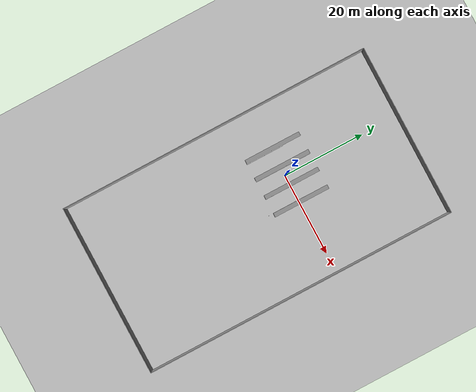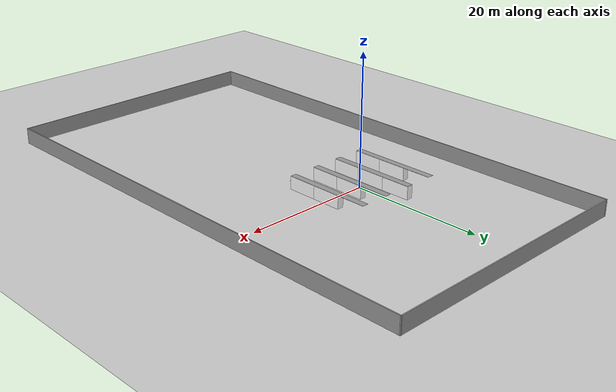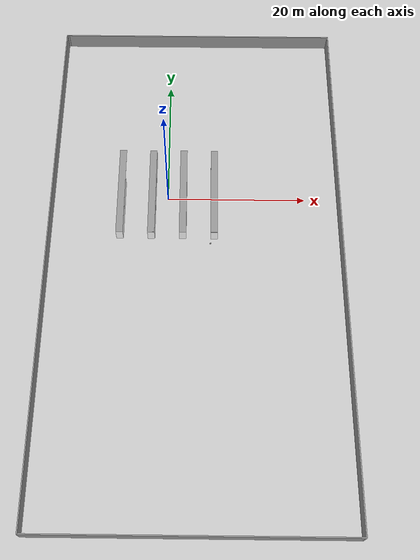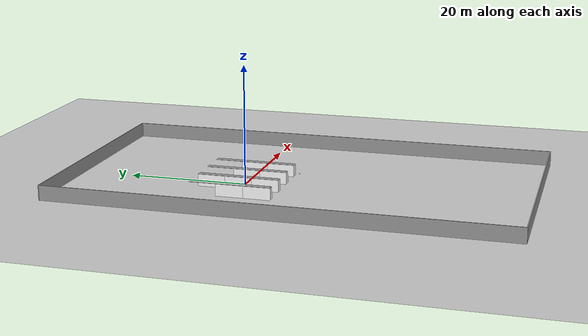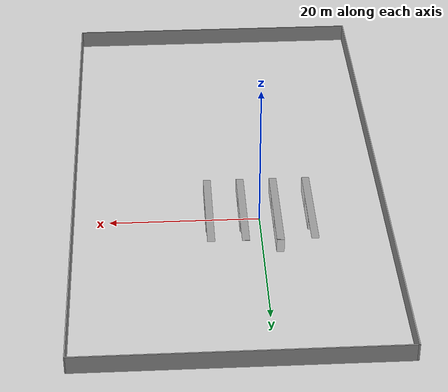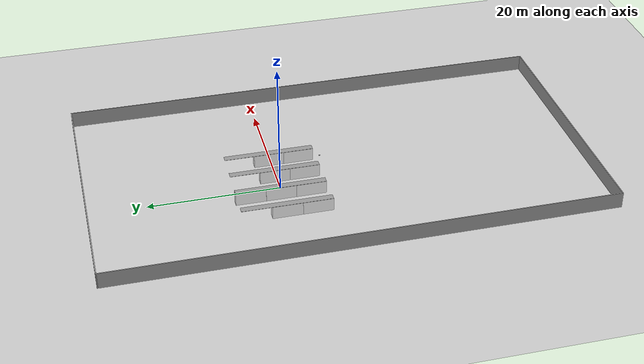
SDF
<sdf version="1.6">
 <world name="default">
  <model name="ground_plane">
   <static>1</static>
   <link name="link">
    <collision name="collision">
     <geometry><plane><normal>0 0 1</normal><size>100 100</size></plane></geometry>
     <surface><friction><ode><mu>100</mu><mu2>50</mu2></ode></friction></surface>
    </collision>
    <visual name="visual">
     <cast_shadows>0</cast_shadows>
     <geometry><plane><normal>0 0 1</normal><size>100 100</size></plane></geometry>
     <material>
      <script><uri>file://media/materials/scripts/gazebo.material</uri><name>Gazebo/Grey</name></script>
     </material>
    </visual>
   </link>
  </model>
  <model name="market_aisle_clone">
   <link name="link_0">
    <inertial>
     <mass>45.3865</mass>
     <inertia><ixx>668.696</ixx><ixy>0</ixy><ixz>0</ixz><iyy>41.6273</iyy><iyz>0</iyz><izz>636.647</izz></inertia>
    </inertial>
    <visual name="visual">
     <material>
      <script>
       <uri>model://market_aisle/materials/scripts</uri>
       <uri>model://market_aisle/materials/textures</uri>
       <name>market_aisle/Picture</name>
      </script>
      <shader type="pixel"><normal_map>__default__</normal_map></shader>
      <ambient>1 1 1 1</ambient>
      <diffuse>1 1 1 1</diffuse>
      <specular>0 0 0 1</specular>
      <emissive>0 0 0 1</emissive>
     </material>
     <geometry><box><size>1 4.57035 2</size></box></geometry>
    </visual>
    <collision name="collision">
     <geometry><box><size>1 4.57035 2</size></box></geometry>
     <surface>
      <friction>
       <ode><mu>1</mu><mu2>1</mu2><fdir1>0 0 0</fdir1><slip1>0</slip1><slip2>0</slip2></ode>
       <torsional>
        <coefficient>1</coefficient>
        <patch_radius>0</patch_radius>
        <surface_radius>0</surface_radius>
        <use_patch_radius>1</use_patch_radius>
        <ode><slip>0</slip></ode>
       </torsional>
      </friction>
      <bounce><restitution_coefficient>0</restitution_coefficient><threshold>1e+06</threshold></bounce>
      <contact>
       <collide_without_contact>0</collide_without_contact>
       <collide_without_contact_bitmask>1</collide_without_contact_bitmask>
       <collide_bitmask>1</collide_bitmask>
       <ode>
        <soft_cfm>0</soft_cfm>
        <soft_erp>0.2</soft_erp>
        <kp>1e+13</kp>
        <kd>1</kd>
        <max_vel>0.01</max_vel>
        <min_depth>0</min_depth>
       </ode>
       <bullet>
        <split_impulse>1</split_impulse>
        <split_impulse_penetration_threshold>-0.01</split_impulse_penetration_threshold>
        <soft_cfm>0</soft_cfm>
        <soft_erp>0.2</soft_erp>
        <kp>1e+13</kp>
        <kd>1</kd>
       </bullet>
      </contact>
     </surface>
    </collision>
   </link>
   <static>1</static>
   <pose>-2.25 -4.17401 1 0 -0 0</pose>
  </model>
  <model name="market_aisle_clone_0">
   <link name="link_0">
    <inertial>
     <mass>45.3865</mass>
     <inertia><ixx>668.696</ixx><ixy>0</ixy><ixz>0</ixz><iyy>41.6273</iyy><iyz>0</iyz><izz>636.647</izz></inertia>
    </inertial>
    <visual name="visual">
     <material>
      <script>
       <uri>model://market_aisle/materials/scripts</uri>
       <uri>model://market_aisle/materials/textures</uri>
       <name>market_aisle/Picture</name>
      </script>
      <shader type="pixel"><normal_map>__default__</normal_map></shader>
      <ambient>1 1 1 1</ambient>
      <diffuse>1 1 1 1</diffuse>
      <specular>0 0 0 1</specular>
      <emissive>0 0 0 1</emissive>
     </material>
     <geometry><box><size>1 4.57035 2</size></box></geometry>
    </visual>
    <collision name="collision">
     <geometry><box><size>1 4.57035 2</size></box></geometry>
     <surface>
      <friction>
       <ode><mu>1</mu><mu2>1</mu2><fdir1>0 0 0</fdir1><slip1>0</slip1><slip2>0</slip2></ode>
       <torsional>
        <coefficient>1</coefficient>
        <patch_radius>0</patch_radius>
        <surface_radius>0</surface_radius>
        <use_patch_radius>1</use_patch_radius>
        <ode><slip>0</slip></ode>
       </torsional>
      </friction>
      <bounce><restitution_coefficient>0</restitution_coefficient><threshold>1e+06</threshold></bounce>
      <contact>
       <collide_without_contact>0</collide_without_contact>
       <collide_without_contact_bitmask>1</collide_without_contact_bitmask>
       <collide_bitmask>1</collide_bitmask>
       <ode>
        <soft_cfm>0</soft_cfm>
        <soft_erp>0.2</soft_erp>
        <kp>1e+13</kp>
        <kd>1</kd>
        <max_vel>0.01</max_vel>
        <min_depth>0</min_depth>
       </ode>
       <bullet>
        <split_impulse>1</split_impulse>
        <split_impulse_penetration_threshold>-0.01</split_impulse_penetration_threshold>
        <soft_cfm>0</soft_cfm>
        <soft_erp>0.2</soft_erp>
        <kp>1e+13</kp>
        <kd>1</kd>
       </bullet>
      </contact>
     </surface>
    </collision>
   </link>
   <static>1</static>
   <pose>-2.25 4.953 1 0 -0 0</pose>
  </model>
  <model name="market_aisle_clone1">
   <link name="link_0">
    <inertial>
     <mass>45.3865</mass>
     <inertia><ixx>668.696</ixx><ixy>0</ixy><ixz>0</ixz><iyy>41.6273</iyy><iyz>0</iyz><izz>636.647</izz></inertia>
    </inertial>
    <visual name="visual">
     <material>
      <script>
       <uri>model://market_aisle/materials/scripts</uri>
       <uri>model://market_aisle/materials/textures</uri>
       <name>market_aisle/Picture</name>
      </script>
      <shader type="pixel"><normal_map>__default__</normal_map></shader>
      <ambient>1 1 1 1</ambient>
      <diffuse>1 1 1 1</diffuse>
      <specular>0 0 0 1</specular>
      <emissive>0 0 0 1</emissive>
     </material>
     <geometry><box><size>1 4.57035 2</size></box></geometry>
    </visual>
    <collision name="collision">
     <geometry><box><size>1 4.57035 2</size></box></geometry>
     <surface>
      <friction>
       <ode><mu>1</mu><mu2>1</mu2><fdir1>0 0 0</fdir1><slip1>0</slip1><slip2>0</slip2></ode>
       <torsional>
        <coefficient>1</coefficient>
        <patch_radius>0</patch_radius>
        <surface_radius>0</surface_radius>
        <use_patch_radius>1</use_patch_radius>
        <ode><slip>0</slip></ode>
       </torsional>
      </friction>
      <bounce><restitution_coefficient>0</restitution_coefficient><threshold>1e+06</threshold></bounce>
      <contact>
       <collide_without_contact>0</collide_without_contact>
       <collide_without_contact_bitmask>1</collide_without_contact_bitmask>
       <collide_bitmask>1</collide_bitmask>
       <ode>
        <soft_cfm>0</soft_cfm>
        <soft_erp>0.2</soft_erp>
        <kp>1e+13</kp>
        <kd>1</kd>
        <max_vel>0.01</max_vel>
        <min_depth>0</min_depth>
       </ode>
       <bullet>
        <split_impulse>1</split_impulse>
        <split_impulse_penetration_threshold>-0.01</split_impulse_penetration_threshold>
        <soft_cfm>0</soft_cfm>
        <soft_erp>0.2</soft_erp>
        <kp>1e+13</kp>
        <kd>1</kd>
       </bullet>
      </contact>
     </surface>
    </collision>
   </link>
   <static>1</static>
   <pose>2.25 -4.17401 1 0 -0 0</pose>
  </model>
  <model name="market_aisle_clone2">
   <link name="link_0">
    <inertial>
     <mass>45.3865</mass>
     <inertia><ixx>668.696</ixx><ixy>0</ixy><ixz>0</ixz><iyy>41.6273</iyy><iyz>0</iyz><izz>636.647</izz></inertia>
    </inertial>
    <visual name="visual">
     <material>
      <script>
       <uri>model://market_aisle/materials/scripts</uri>
       <uri>model://market_aisle/materials/textures</uri>
       <name>market_aisle/Picture</name>
      </script>
      <shader type="pixel"><normal_map>__default__</normal_map></shader>
      <ambient>1 1 1 1</ambient>
      <diffuse>1 1 1 1</diffuse>
      <specular>0 0 0 1</specular>
      <emissive>0 0 0 1</emissive>
     </material>
     <geometry><box><size>1 4.57035 2</size></box></geometry>
    </visual>
    <collision name="collision">
     <geometry><box><size>1 4.57035 2</size></box></geometry>
     <surface>
      <friction>
       <ode><mu>1</mu><mu2>1</mu2><fdir1>0 0 0</fdir1><slip1>0</slip1><slip2>0</slip2></ode>
       <torsional>
        <coefficient>1</coefficient>
        <patch_radius>0</patch_radius>
        <surface_radius>0</surface_radius>
        <use_patch_radius>1</use_patch_radius>
        <ode><slip>0</slip></ode>
       </torsional>
      </friction>
      <bounce><restitution_coefficient>0</restitution_coefficient><threshold>1e+06</threshold></bounce>
      <contact>
       <collide_without_contact>0</collide_without_contact>
       <collide_without_contact_bitmask>1</collide_without_contact_bitmask>
       <collide_bitmask>1</collide_bitmask>
       <ode>
        <soft_cfm>0</soft_cfm>
        <soft_erp>0.2</soft_erp>
        <kp>1e+13</kp>
        <kd>1</kd>
        <max_vel>0.01</max_vel>
        <min_depth>0</min_depth>
       </ode>
       <bullet>
        <split_impulse>1</split_impulse>
        <split_impulse_penetration_threshold>-0.01</split_impulse_penetration_threshold>
        <soft_cfm>0</soft_cfm>
        <soft_erp>0.2</soft_erp>
        <kp>1e+13</kp>
        <kd>1</kd>
       </bullet>
      </contact>
     </surface>
    </collision>
   </link>
   <static>1</static>
   <pose>6.75 -4.17401 1 0 -0 0</pose>
  </model>
  <model name="market_aisle_clone3">
   <link name="link_0">
    <inertial>
     <mass>45.3865</mass>
     <inertia><ixx>668.696</ixx><ixy>0</ixy><ixz>0</ixz><iyy>41.6273</iyy><iyz>0</iyz><izz>636.647</izz></inertia>
    </inertial>
    <visual name="visual">
     <material>
      <script>
       <uri>model://market_aisle/materials/scripts</uri>
       <uri>model://market_aisle/materials/textures</uri>
       <name>market_aisle/Picture</name>
      </script>
      <shader type="pixel"><normal_map>__default__</normal_map></shader>
      <ambient>1 1 1 1</ambient>
      <diffuse>1 1 1 1</diffuse>
      <specular>0 0 0 1</specular>
      <emissive>0 0 0 1</emissive>
     </material>
     <geometry><box><size>1 4.57035 2</size></box></geometry>
    </visual>
    <collision name="collision">
     <geometry><box><size>1 4.57035 2</size></box></geometry>
     <surface>
      <friction>
       <ode><mu>1</mu><mu2>1</mu2><fdir1>0 0 0</fdir1><slip1>0</slip1><slip2>0</slip2></ode>
       <torsional>
        <coefficient>1</coefficient>
        <patch_radius>0</patch_radius>
        <surface_radius>0</surface_radius>
        <use_patch_radius>1</use_patch_radius>
        <ode><slip>0</slip></ode>
       </torsional>
      </friction>
      <bounce><restitution_coefficient>0</restitution_coefficient><threshold>1e+06</threshold></bounce>
      <contact>
       <collide_without_contact>0</collide_without_contact>
       <collide_without_contact_bitmask>1</collide_without_contact_bitmask>
       <collide_bitmask>1</collide_bitmask>
       <ode>
        <soft_cfm>0</soft_cfm>
        <soft_erp>0.2</soft_erp>
        <kp>1e+13</kp>
        <kd>1</kd>
        <max_vel>0.01</max_vel>
        <min_depth>0</min_depth>
       </ode>
       <bullet>
        <split_impulse>1</split_impulse>
        <split_impulse_penetration_threshold>-0.01</split_impulse_penetration_threshold>
        <soft_cfm>0</soft_cfm>
        <soft_erp>0.2</soft_erp>
        <kp>1e+13</kp>
        <kd>1</kd>
       </bullet>
      </contact>
     </surface>
    </collision>
   </link>
   <static>1</static>
   <pose>-6.75 -4.17401 1 0 -0 0</pose>
  </model>
  <model name="market_aisle_clone1_clone">
   <link name="link_0">
    <inertial>
     <mass>45.3865</mass>
     <inertia><ixx>668.696</ixx><ixy>0</ixy><ixz>0</ixz><iyy>41.6273</iyy><iyz>0</iyz><izz>636.647</izz></inertia>
    </inertial>
    <visual name="visual">
     <material>
      <script>
       <uri>model://market_aisle/materials/scripts</uri>
       <uri>model://market_aisle/materials/textures</uri>
       <name>market_aisle/Picture</name>
      </script>
      <shader type="pixel"><normal_map>__default__</normal_map></shader>
      <ambient>1 1 1 1</ambient>
      <diffuse>1 1 1 1</diffuse>
      <specular>0 0 0 1</specular>
      <emissive>0 0 0 1</emissive>
     </material>
     <geometry><box><size>1 4.57035 2</size></box></geometry>
    </visual>
    <collision name="collision">
     <geometry><box><size>1 4.57035 2</size></box></geometry>
     <surface>
      <friction>
       <ode><mu>1</mu><mu2>1</mu2><fdir1>0 0 0</fdir1><slip1>0</slip1><slip2>0</slip2></ode>
       <torsional>
        <coefficient>1</coefficient>
        <patch_radius>0</patch_radius>
        <surface_radius>0</surface_radius>
        <use_patch_radius>1</use_patch_radius>
        <ode><slip>0</slip></ode>
       </torsional>
      </friction>
      <bounce><restitution_coefficient>0</restitution_coefficient><threshold>1e+06</threshold></bounce>
      <contact>
       <collide_without_contact>0</collide_without_contact>
       <collide_without_contact_bitmask>1</collide_without_contact_bitmask>
       <collide_bitmask>1</collide_bitmask>
       <ode>
        <soft_cfm>0</soft_cfm>
        <soft_erp>0.2</soft_erp>
        <kp>1e+13</kp>
        <kd>1</kd>
        <max_vel>0.01</max_vel>
        <min_depth>0</min_depth>
       </ode>
       <bullet>
        <split_impulse>1</split_impulse>
        <split_impulse_penetration_threshold>-0.01</split_impulse_penetration_threshold>
        <soft_cfm>0</soft_cfm>
        <soft_erp>0.2</soft_erp>
        <kp>1e+13</kp>
        <kd>1</kd>
       </bullet>
      </contact>
     </surface>
    </collision>
   </link>
   <static>1</static>
   <pose>2.25 0.385462 1 0 -0 0</pose>
  </model>
  <model name="market_aisle_clone1_clone_0">
   <link name="link_0">
    <inertial>
     <mass>45.3865</mass>
     <inertia><ixx>668.696</ixx><ixy>0</ixy><ixz>0</ixz><iyy>41.6273</iyy><iyz>0</iyz><izz>636.647</izz></inertia>
    </inertial>
    <visual name="visual">
     <material>
      <script>
       <uri>model://market_aisle/materials/scripts</uri>
       <uri>model://market_aisle/materials/textures</uri>
       <name>market_aisle/Picture</name>
      </script>
      <shader type="pixel"><normal_map>__default__</normal_map></shader>
      <ambient>1 1 1 1</ambient>
      <diffuse>1 1 1 1</diffuse>
      <specular>0 0 0 1</specular>
      <emissive>0 0 0 1</emissive>
     </material>
     <geometry><box><size>1 4.57035 2</size></box></geometry>
    </visual>
    <collision name="collision">
     <geometry><box><size>1 4.57035 2</size></box></geometry>
     <surface>
      <friction>
       <ode><mu>1</mu><mu2>1</mu2><fdir1>0 0 0</fdir1><slip1>0</slip1><slip2>0</slip2></ode>
       <torsional>
        <coefficient>1</coefficient>
        <patch_radius>0</patch_radius>
        <surface_radius>0</surface_radius>
        <use_patch_radius>1</use_patch_radius>
        <ode><slip>0</slip></ode>
       </torsional>
      </friction>
      <bounce><restitution_coefficient>0</restitution_coefficient><threshold>1e+06</threshold></bounce>
      <contact>
       <collide_without_contact>0</collide_without_contact>
       <collide_without_contact_bitmask>1</collide_without_contact_bitmask>
       <collide_bitmask>1</collide_bitmask>
       <ode>
        <soft_cfm>0</soft_cfm>
        <soft_erp>0.2</soft_erp>
        <kp>1e+13</kp>
        <kd>1</kd>
        <max_vel>0.01</max_vel>
        <min_depth>0</min_depth>
       </ode>
       <bullet>
        <split_impulse>1</split_impulse>
        <split_impulse_penetration_threshold>-0.01</split_impulse_penetration_threshold>
        <soft_cfm>0</soft_cfm>
        <soft_erp>0.2</soft_erp>
        <kp>1e+13</kp>
        <kd>1</kd>
       </bullet>
      </contact>
     </surface>
    </collision>
   </link>
   <static>1</static>
   <pose>-2.25 0.377509 1 0 -0 0</pose>
  </model>
  <model name="market_aisle_clone1_clone_1">
   <link name="link_0">
    <inertial>
     <mass>45.3865</mass>
     <inertia><ixx>668.696</ixx><ixy>0</ixy><ixz>0</ixz><iyy>41.6273</iyy><iyz>0</iyz><izz>636.647</izz></inertia>
    </inertial>
    <visual name="visual">
     <material>
      <script>
       <uri>model://market_aisle/materials/scripts</uri>
       <uri>model://market_aisle/materials/textures</uri>
       <name>market_aisle/Picture</name>
      </script>
      <shader type="pixel"><normal_map>__default__</normal_map></shader>
      <ambient>1 1 1 1</ambient>
      <diffuse>1 1 1 1</diffuse>
      <specular>0 0 0 1</specular>
      <emissive>0 0 0 1</emissive>
     </material>
     <geometry><box><size>1 4.57035 2</size></box></geometry>
    </visual>
    <collision name="collision">
     <geometry><box><size>1 4.57035 2</size></box></geometry>
     <surface>
      <friction>
       <ode><mu>1</mu><mu2>1</mu2><fdir1>0 0 0</fdir1><slip1>0</slip1><slip2>0</slip2></ode>
       <torsional>
        <coefficient>1</coefficient>
        <patch_radius>0</patch_radius>
        <surface_radius>0</surface_radius>
        <use_patch_radius>1</use_patch_radius>
        <ode><slip>0</slip></ode>
       </torsional>
      </friction>
      <bounce><restitution_coefficient>0</restitution_coefficient><threshold>1e+06</threshold></bounce>
      <contact>
       <collide_without_contact>0</collide_without_contact>
       <collide_without_contact_bitmask>1</collide_without_contact_bitmask>
       <collide_bitmask>1</collide_bitmask>
       <ode>
        <soft_cfm>0</soft_cfm>
        <soft_erp>0.2</soft_erp>
        <kp>1e+13</kp>
        <kd>1</kd>
        <max_vel>0.01</max_vel>
        <min_depth>0</min_depth>
       </ode>
       <bullet>
        <split_impulse>1</split_impulse>
        <split_impulse_penetration_threshold>-0.01</split_impulse_penetration_threshold>
        <soft_cfm>0</soft_cfm>
        <soft_erp>0.2</soft_erp>
        <kp>1e+13</kp>
        <kd>1</kd>
       </bullet>
      </contact>
     </surface>
    </collision>
   </link>
   <static>1</static>
   <pose>-6.75 0.388711 1 0 -0 0</pose>
  </model>
  <model name="market_aisle_clone1_clone_2">
   <link name="link_0">
    <inertial>
     <mass>45.3865</mass>
     <inertia><ixx>668.696</ixx><ixy>0</ixy><ixz>0</ixz><iyy>41.6273</iyy><iyz>0</iyz><izz>636.647</izz></inertia>
    </inertial>
    <visual name="visual">
     <material>
      <script>
       <uri>model://market_aisle/materials/scripts</uri>
       <uri>model://market_aisle/materials/textures</uri>
       <name>market_aisle/Picture</name>
      </script>
      <shader type="pixel"><normal_map>__default__</normal_map></shader>
      <ambient>1 1 1 1</ambient>
      <diffuse>1 1 1 1</diffuse>
      <specular>0 0 0 1</specular>
      <emissive>0 0 0 1</emissive>
     </material>
     <geometry><box><size>1 4.57035 2</size></box></geometry>
    </visual>
    <collision name="collision">
     <geometry><box><size>1 4.57035 2</size></box></geometry>
     <surface>
      <friction>
       <ode><mu>1</mu><mu2>1</mu2><fdir1>0 0 0</fdir1><slip1>0</slip1><slip2>0</slip2></ode>
       <torsional>
        <coefficient>1</coefficient>
        <patch_radius>0</patch_radius>
        <surface_radius>0</surface_radius>
        <use_patch_radius>1</use_patch_radius>
        <ode><slip>0</slip></ode>
       </torsional>
      </friction>
      <bounce><restitution_coefficient>0</restitution_coefficient><threshold>1e+06</threshold></bounce>
      <contact>
       <collide_without_contact>0</collide_without_contact>
       <collide_without_contact_bitmask>1</collide_without_contact_bitmask>
       <collide_bitmask>1</collide_bitmask>
       <ode>
        <soft_cfm>0</soft_cfm>
        <soft_erp>0.2</soft_erp>
        <kp>1e+13</kp>
        <kd>1</kd>
        <max_vel>0.01</max_vel>
        <min_depth>0</min_depth>
       </ode>
       <bullet>
        <split_impulse>1</split_impulse>
        <split_impulse_penetration_threshold>-0.01</split_impulse_penetration_threshold>
        <soft_cfm>0</soft_cfm>
        <soft_erp>0.2</soft_erp>
        <kp>1e+13</kp>
        <kd>1</kd>
       </bullet>
      </contact>
     </surface>
    </collision>
   </link>
   <static>1</static>
   <pose>6.75 0.394789 1 0 -0 0</pose>
  </model>
  <model name="cocacola">
   <static>0</static>
   <link name="link">
    <inertial>
     <mass>0.125</mass>
     <inertia><ixx>0</ixx><ixy>0</ixy><ixz>0</ixz><iyy>0</iyy><iyz>0</iyz><izz>0</izz></inertia>
    </inertial>
    <collision name="collision">
     <pose>0 0 0.075 -3.14159 -0 0</pose>
     <geometry><cylinder><radius>0.04</radius><length>0.15</length></cylinder></geometry>
    </collision>
    <visual name="visual">
     <pose>0 0 0.075 -3.14159 -0 0</pose>
     <geometry><cylinder><radius>0.04</radius><length>0.15</length></cylinder></geometry>
     <material>
      <script>
       <uri>model://cocacola/material/scripts</uri>
       <uri>model://cocacola/material/textures</uri>
       <name>Custom/cocacola</name>
      </script>
     </material>
    </visual>
    <velocity_decay><linear>0</linear><angular>0</angular></velocity_decay>
   </link>
   <pose>6.26672 -7.45882 0.559722 -0.003472 0.100888 -0.035064</pose>
  </model>
  <model name="cocacola_clone">
   <static>0</static>
   <link name="link">
    <inertial>
     <mass>0.125</mass>
     <inertia><ixx>0</ixx><ixy>0</ixy><ixz>0</ixz><iyy>0</iyy><iyz>0</iyz><izz>0</izz></inertia>
    </inertial>
    <collision name="collision">
     <pose>0 0 0.075 -3.14159 -0 0</pose>
     <geometry><cylinder><radius>0.04</radius><length>0.15</length></cylinder></geometry>
    </collision>
    <visual name="visual">
     <pose>0 0 0.075 -3.14159 -0 0</pose>
     <geometry><cylinder><radius>0.04</radius><length>0.15</length></cylinder></geometry>
     <material>
      <script>
       <uri>model://cocacola/material/scripts</uri>
       <uri>model://cocacola/material/textures</uri>
       <name>Custom/cocacola</name>
      </script>
     </material>
    </visual>
    <velocity_decay><linear>0</linear><angular>0</angular></velocity_decay>
   </link>
   <pose>6.26674 -7.55974 0.559854 0.000678 0.12636 -0.003264</pose>
  </model>
  <model name="cocacola_clone_0">
   <static>0</static>
   <link name="link">
    <inertial>
     <mass>0.125</mass>
     <inertia><ixx>0</ixx><ixy>0</ixy><ixz>0</ixz><iyy>0</iyy><iyz>0</iyz><izz>0</izz></inertia>
    </inertial>
    <collision name="collision">
     <pose>0 0 0.075 -3.14159 -0 0</pose>
     <geometry><cylinder><radius>0.04</radius><length>0.15</length></cylinder></geometry>
    </collision>
    <visual name="visual">
     <pose>0 0 0.075 -3.14159 -0 0</pose>
     <geometry><cylinder><radius>0.04</radius><length>0.15</length></cylinder></geometry>
     <material>
      <script>
       <uri>model://cocacola/material/scripts</uri>
       <uri>model://cocacola/material/textures</uri>
       <name>Custom/cocacola</name>
      </script>
     </material>
    </visual>
    <velocity_decay><linear>0</linear><angular>0</angular></velocity_decay>
   </link>
   <pose>6.18345 -7.46173 0.569353 -0.003199 0.126342 -0.048477</pose>
  </model>
  <model name="cocacola_clone_1">
   <static>0</static>
   <link name="link">
    <inertial>
     <mass>0.125</mass>
     <inertia><ixx>0</ixx><ixy>0</ixy><ixz>0</ixz><iyy>0</iyy><iyz>0</iyz><izz>0</izz></inertia>
    </inertial>
    <collision name="collision">
     <pose>0 0 0.075 -3.14159 -0 0</pose>
     <geometry><cylinder><radius>0.04</radius><length>0.15</length></cylinder></geometry>
    </collision>
    <visual name="visual">
     <pose>0 0 0.075 -3.14159 -0 0</pose>
     <geometry><cylinder><radius>0.04</radius><length>0.15</length></cylinder></geometry>
     <material>
      <script>
       <uri>model://cocacola/material/scripts</uri>
       <uri>model://cocacola/material/textures</uri>
       <name>Custom/cocacola</name>
      </script>
     </material>
    </visual>
    <velocity_decay><linear>0</linear><angular>0</angular></velocity_decay>
   </link>
   <pose>6.18723 -7.5568 0.568733 0.002407 0.119071 0.008247</pose>
  </model>
  <model name="asile_top_0">
   <link name="link_0">
    <pose>5e-06 0 -4e-06 0 -0 0</pose>
    <inertial>
     <mass>0.475296</mass>
     <inertia>
      <ixx>7.40524</ixx>
      <ixy>0</ixy>
      <ixz>0</ixz>
      <iyy>0.0496263</iyy>
      <iyz>0</iyz>
      <izz>7.45479</izz>
     </inertia>
    </inertial>
    <visual name="visual">
     <geometry><box><size>1 13.6734 0.031027</size></box></geometry>
     <material>
      <lighting>1</lighting>
      <script><uri>file://media/materials/scripts/gazebo.material</uri><name>Gazebo/Grey</name></script>
      <shader type="pixel"><normal_map>__default__</normal_map></shader>
      <ambient>0.3 0.3 0.3 1</ambient>
      <diffuse>0.7 0.7 0.7 1</diffuse>
      <specular>0.01 0.01 0.01 1</specular>
      <emissive>0 0 0 1</emissive>
     </material>
    </visual>
    <collision name="collision">
     <geometry><box><size>1 13.6734 0.031027</size></box></geometry>
     <surface>
      <friction>
       <ode><mu>1</mu><mu2>1</mu2><fdir1>0 0 0</fdir1><slip1>0</slip1><slip2>0</slip2></ode>
       <torsional>
        <coefficient>1</coefficient>
        <patch_radius>0</patch_radius>
        <surface_radius>0</surface_radius>
        <use_patch_radius>1</use_patch_radius>
        <ode><slip>0</slip></ode>
       </torsional>
      </friction>
      <bounce><restitution_coefficient>0</restitution_coefficient><threshold>1e+06</threshold></bounce>
      <contact>
       <collide_without_contact>0</collide_without_contact>
       <collide_without_contact_bitmask>1</collide_without_contact_bitmask>
       <collide_bitmask>1</collide_bitmask>
       <ode>
        <soft_cfm>0</soft_cfm>
        <soft_erp>0.2</soft_erp>
        <kp>1e+13</kp>
        <kd>1</kd>
        <max_vel>0.01</max_vel>
        <min_depth>0</min_depth>
       </ode>
       <bullet>
        <split_impulse>1</split_impulse>
        <split_impulse_penetration_threshold>-0.01</split_impulse_penetration_threshold>
        <soft_cfm>0</soft_cfm>
        <soft_erp>0.2</soft_erp>
        <kp>1e+13</kp>
        <kd>1</kd>
       </bullet>
      </contact>
     </surface>
    </collision>
   </link>
   <static>1</static>
   <pose>-6.75 0.384568 2.02165 0 -0 0</pose>
  </model>
  <model name="asile_top">
   <link name="link_0">
    <pose>5e-06 0 -4e-06 0 -0 0</pose>
    <inertial>
     <mass>0.475296</mass>
     <inertia>
      <ixx>7.40524</ixx>
      <ixy>0</ixy>
      <ixz>0</ixz>
      <iyy>0.0496263</iyy>
      <iyz>0</iyz>
      <izz>7.45479</izz>
     </inertia>
    </inertial>
    <visual name="visual">
     <geometry><box><size>1 13.6734 0.031027</size></box></geometry>
     <material>
      <lighting>1</lighting>
      <script><uri>file://media/materials/scripts/gazebo.material</uri><name>Gazebo/Grey</name></script>
      <shader type="pixel"><normal_map>__default__</normal_map></shader>
      <ambient>0.3 0.3 0.3 1</ambient>
      <diffuse>0.7 0.7 0.7 1</diffuse>
      <specular>0.01 0.01 0.01 1</specular>
      <emissive>0 0 0 1</emissive>
     </material>
    </visual>
    <collision name="collision">
     <geometry><box><size>1 13.6734 0.031027</size></box></geometry>
     <surface>
      <friction>
       <ode><mu>1</mu><mu2>1</mu2><fdir1>0 0 0</fdir1><slip1>0</slip1><slip2>0</slip2></ode>
       <torsional>
        <coefficient>1</coefficient>
        <patch_radius>0</patch_radius>
        <surface_radius>0</surface_radius>
        <use_patch_radius>1</use_patch_radius>
        <ode><slip>0</slip></ode>
       </torsional>
      </friction>
      <bounce><restitution_coefficient>0</restitution_coefficient><threshold>1e+06</threshold></bounce>
      <contact>
       <collide_without_contact>0</collide_without_contact>
       <collide_without_contact_bitmask>1</collide_without_contact_bitmask>
       <collide_bitmask>1</collide_bitmask>
       <ode>
        <soft_cfm>0</soft_cfm>
        <soft_erp>0.2</soft_erp>
        <kp>1e+13</kp>
        <kd>1</kd>
        <max_vel>0.01</max_vel>
        <min_depth>0</min_depth>
       </ode>
       <bullet>
        <split_impulse>1</split_impulse>
        <split_impulse_penetration_threshold>-0.01</split_impulse_penetration_threshold>
        <soft_cfm>0</soft_cfm>
        <soft_erp>0.2</soft_erp>
        <kp>1e+13</kp>
        <kd>1</kd>
       </bullet>
      </contact>
     </surface>
    </collision>
   </link>
   <static>1</static>
   <pose>-2.25 0.384568 2.02165 0 -0 0</pose>
  </model>
  <model name="asile_top_1">
   <link name="link_0">
    <pose>5e-06 0 -4e-06 0 -0 0</pose>
    <inertial>
     <mass>0.475296</mass>
     <inertia>
      <ixx>7.40524</ixx>
      <ixy>0</ixy>
      <ixz>0</ixz>
      <iyy>0.0496263</iyy>
      <iyz>0</iyz>
      <izz>7.45479</izz>
     </inertia>
    </inertial>
    <visual name="visual">
     <geometry><box><size>1 13.6734 0.031027</size></box></geometry>
     <material>
      <lighting>1</lighting>
      <script><uri>file://media/materials/scripts/gazebo.material</uri><name>Gazebo/Grey</name></script>
      <shader type="pixel"><normal_map>__default__</normal_map></shader>
      <ambient>0.3 0.3 0.3 1</ambient>
      <diffuse>0.7 0.7 0.7 1</diffuse>
      <specular>0.01 0.01 0.01 1</specular>
      <emissive>0 0 0 1</emissive>
     </material>
    </visual>
    <collision name="collision">
     <geometry><box><size>1 13.6734 0.031027</size></box></geometry>
     <surface>
      <friction>
       <ode><mu>1</mu><mu2>1</mu2><fdir1>0 0 0</fdir1><slip1>0</slip1><slip2>0</slip2></ode>
       <torsional>
        <coefficient>1</coefficient>
        <patch_radius>0</patch_radius>
        <surface_radius>0</surface_radius>
        <use_patch_radius>1</use_patch_radius>
        <ode><slip>0</slip></ode>
       </torsional>
      </friction>
      <bounce><restitution_coefficient>0</restitution_coefficient><threshold>1e+06</threshold></bounce>
      <contact>
       <collide_without_contact>0</collide_without_contact>
       <collide_without_contact_bitmask>1</collide_without_contact_bitmask>
       <collide_bitmask>1</collide_bitmask>
       <ode>
        <soft_cfm>0</soft_cfm>
        <soft_erp>0.2</soft_erp>
        <kp>1e+13</kp>
        <kd>1</kd>
        <max_vel>0.01</max_vel>
        <min_depth>0</min_depth>
       </ode>
       <bullet>
        <split_impulse>1</split_impulse>
        <split_impulse_penetration_threshold>-0.01</split_impulse_penetration_threshold>
        <soft_cfm>0</soft_cfm>
        <soft_erp>0.2</soft_erp>
        <kp>1e+13</kp>
        <kd>1</kd>
       </bullet>
      </contact>
     </surface>
    </collision>
   </link>
   <static>1</static>
   <pose>2.25 0.384568 2.02165 0 -0 0</pose>
  </model>
  <model name="asile_top_2">
   <link name="link_0">
    <pose>5e-06 0 -4e-06 0 -0 0</pose>
    <inertial>
     <mass>0.475296</mass>
     <inertia>
      <ixx>7.40524</ixx>
      <ixy>0</ixy>
      <ixz>0</ixz>
      <iyy>0.0496263</iyy>
      <iyz>0</iyz>
      <izz>7.45479</izz>
     </inertia>
    </inertial>
    <visual name="visual">
     <geometry><box><size>1 13.6734 0.031027</size></box></geometry>
     <material>
      <lighting>1</lighting>
      <script><uri>file://media/materials/scripts/gazebo.material</uri><name>Gazebo/Grey</name></script>
      <shader type="pixel"><normal_map>__default__</normal_map></shader>
      <ambient>0.3 0.3 0.3 1</ambient>
      <diffuse>0.7 0.7 0.7 1</diffuse>
      <specular>0.01 0.01 0.01 1</specular>
      <emissive>0 0 0 1</emissive>
     </material>
    </visual>
    <collision name="collision">
     <geometry><box><size>1 13.6734 0.031027</size></box></geometry>
     <surface>
      <friction>
       <ode><mu>1</mu><mu2>1</mu2><fdir1>0 0 0</fdir1><slip1>0</slip1><slip2>0</slip2></ode>
       <torsional>
        <coefficient>1</coefficient>
        <patch_radius>0</patch_radius>
        <surface_radius>0</surface_radius>
        <use_patch_radius>1</use_patch_radius>
        <ode><slip>0</slip></ode>
       </torsional>
      </friction>
      <bounce><restitution_coefficient>0</restitution_coefficient><threshold>1e+06</threshold></bounce>
      <contact>
       <collide_without_contact>0</collide_without_contact>
       <collide_without_contact_bitmask>1</collide_without_contact_bitmask>
       <collide_bitmask>1</collide_bitmask>
       <ode>
        <soft_cfm>0</soft_cfm>
        <soft_erp>0.2</soft_erp>
        <kp>1e+13</kp>
        <kd>1</kd>
        <max_vel>0.01</max_vel>
        <min_depth>0</min_depth>
       </ode>
       <bullet>
        <split_impulse>1</split_impulse>
        <split_impulse_penetration_threshold>-0.01</split_impulse_penetration_threshold>
        <soft_cfm>0</soft_cfm>
        <soft_erp>0.2</soft_erp>
        <kp>1e+13</kp>
        <kd>1</kd>
       </bullet>
      </contact>
     </surface>
    </collision>
   </link>
   <static>1</static>
   <pose>6.75 0.384568 2.02165 0 -0 0</pose>
  </model>
  <model name="market_walls">
   <pose>4.01618 -9.33546 0 0 -0 0</pose>
   <link name="Wall_0">
    <collision name="Wall_0_Collision">
     <geometry><box><size>76.25 0.15 2.5</size></box></geometry>
     <pose>0 0 1.25 0 -0 0</pose>
    </collision>
    <visual name="Wall_0_Visual">
     <pose>0 0 1.25 0 -0 0</pose>
     <geometry><box><size>76.25 0.15 2.5</size></box></geometry>
     <material>
      <script><uri>file://media/materials/scripts/gazebo.material</uri><name>Gazebo/Grey</name></script>
      <ambient>1 1 1 1</ambient>
     </material>
     <meta><layer>0</layer></meta>
    </visual>
    <pose>-20.8 -2e-06 0 0 0 -1.5708</pose>
   </link>
   <link name="Wall_1">
    <collision name="Wall_1_Collision">
     <geometry><box><size>41.75 0.15 2.5</size></box></geometry>
     <pose>0 0 1.25 0 -0 0</pose>
    </collision>
    <visual name="Wall_1_Visual">
     <pose>0 0 1.25 0 -0 0</pose>
     <geometry><box><size>41.75 0.15 2.5</size></box></geometry>
     <material>
      <script><uri>file://media/materials/scripts/gazebo.material</uri><name>Gazebo/Grey</name></script>
      <ambient>1 1 1 1</ambient>
     </material>
     <meta><layer>0</layer></meta>
    </visual>
    <pose>0 -38.05 0 0 -0 0</pose>
   </link>
   <link name="Wall_2">
    <collision name="Wall_2_Collision">
     <geometry><box><size>76.25 0.15 2.5</size></box></geometry>
     <pose>0 0 1.25 0 -0 0</pose>
    </collision>
    <visual name="Wall_2_Visual">
     <pose>0 0 1.25 0 -0 0</pose>
     <geometry><box><size>76.25 0.15 2.5</size></box></geometry>
     <material>
      <script><uri>file://media/materials/scripts/gazebo.material</uri><name>Gazebo/Grey</name></script>
      <ambient>1 1 1 1</ambient>
     </material>
     <meta><layer>0</layer></meta>
    </visual>
    <pose>20.8 -2e-06 0 0 -0 1.5708</pose>
   </link>
   <link name="Wall_3">
    <collision name="Wall_3_Collision">
     <geometry><box><size>41.5 0.15 2.5</size></box></geometry>
     <pose>0 0 1.25 0 -0 0</pose>
    </collision>
    <visual name="Wall_3_Visual">
     <pose>0 0 1.25 0 -0 0</pose>
     <geometry><box><size>41.5 0.15 2.5</size></box></geometry>
     <material>
      <script><uri>file://media/materials/scripts/gazebo.material</uri><name>Gazebo/Grey</name></script>
      <ambient>1 1 1 1</ambient>
     </material>
     <meta><layer>0</layer></meta>
    </visual>
    <pose>0.125 38.05 0 0 -0 3.14159</pose>
   </link>
   <link name="Wall_5">
    <collision name="Wall_5_Collision">
     <geometry><box><size>0.4 0.15 2.5</size></box></geometry>
     <pose>0 0 1.25 0 -0 0</pose>
    </collision>
    <visual name="Wall_5_Visual">
     <pose>0 0 1.25 0 -0 0</pose>
     <geometry><box><size>0.4 0.15 2.5</size></box></geometry>
     <material>
      <script><uri>file://media/materials/scripts/gazebo.material</uri><name>Gazebo/Grey</name></script>
      <ambient>1 1 1 1</ambient>
     </material>
     <meta><layer>0</layer></meta>
    </visual>
    <pose>-20.675 38.05 0 0 0 -3.14159</pose>
   </link>
   <static>1</static>
  </model>
 </world>
</sdf>
